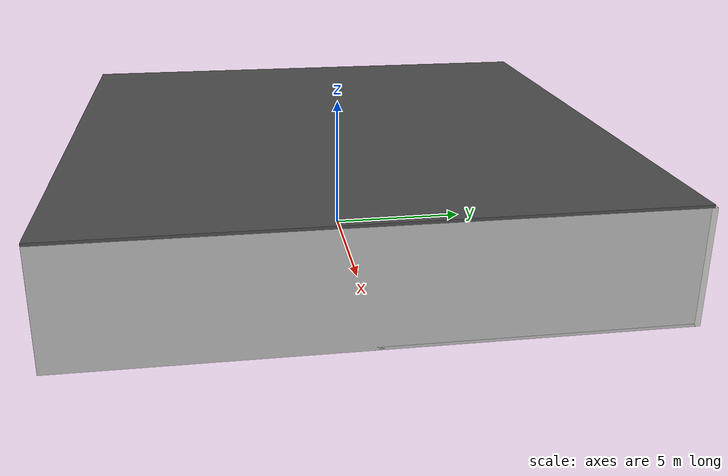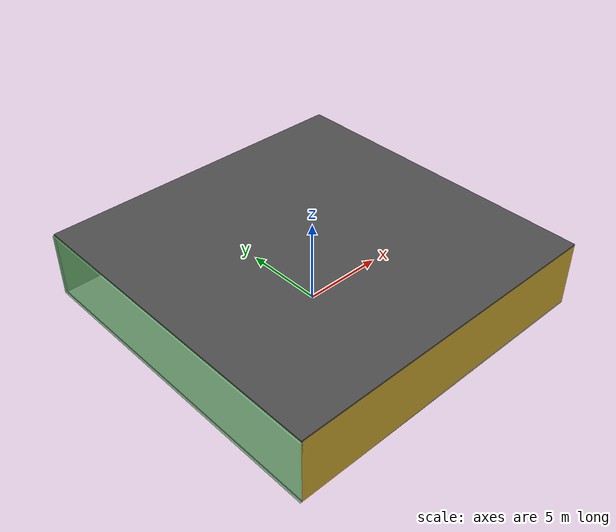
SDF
<sdf version="1.4">
 <world name="default">
  <physics type="ode">
   <max_step_size>0.001</max_step_size>
   <real_time_factor>1</real_time_factor>
   <real_time_update_rate>1000</real_time_update_rate>
   <gravity>0 0 -9.8</gravity>
  </physics>
  <scene><ambient>0.4 0.4 0.4 1</ambient><background>0.7 0.7 0.7 1</background><shadows>1</shadows></scene>
  <model name="Surrounding">
   <static>1</static>
   <link name="Ceiling">
    <collision name="Ceiling_Collision"><geometry><box><size>20 20 0.1</size></box></geometry></collision>
    <visual name="Ceiling_Visual">
     <geometry><box><size>20 20 0.1</size></box></geometry>
     <material>
      <script><uri>file://media/materials/scripts/gazebo.material</uri><name>Gazebo/Road</name></script>
     </material>
    </visual>
    <pose>0 0 4.05 0 0 0</pose>
   </link>
   <link name="Wall_South">
    <collision name="Wall_South_Collision">
     <geometry><box><size>20 0 4</size></box></geometry>
     <pose>0 0 2 0 -0 0</pose>
    </collision>
    <visual name="Wall_South_Visual">
     <pose>0 0 2 0 -0 0</pose>
     <geometry><box><size>20 0 4</size></box></geometry>
     <material>
      <script><uri>file://media/materials/scripts/gazebo.material</uri><name>Gazebo/Gold</name></script>
     </material>
    </visual>
    <velocity_decay><linear>0</linear><angular>0</angular></velocity_decay>
    <pose>0 -10 0 0 -0 0</pose>
   </link>
   <link name="Wall_East">
    <collision name="Wall_21_Collision">
     <geometry><box><size>20 0 4</size></box></geometry>
     <pose>0 0 2 0 -0 0</pose>
    </collision>
    <visual name="Wall_21_Visual">
     <pose>0 0 2 0 -0 0</pose>
     <geometry><box><size>20 0 4</size></box></geometry>
     <material>
      <script><uri>file://media/materials/scripts/gazebo.material</uri><name>Gazebo/CloudySky</name></script>
     </material>
    </visual>
    <velocity_decay><linear>0</linear><angular>0</angular></velocity_decay>
    <pose>10 0 0 0 -0 1.5708</pose>
   </link>
   <link name="Wall_North">
    <collision name="Wall_22_Collision">
     <geometry><box><size>20 0.2 4</size></box></geometry>
     <pose>0 0 2 0 -0 0</pose>
    </collision>
    <visual name="Wall_22_Visual">
     <pose>0 0 2 0 -0 0</pose>
     <geometry><box><size>20 0.2 4</size></box></geometry>
     <material>
      <script><uri>file://media/materials/scripts/gazebo.material</uri><name>Gazebo/CeilingTiled</name></script>
     </material>
    </visual>
    <velocity_decay><linear>0</linear><angular>0</angular></velocity_decay>
    <pose>0 10 0 0 -0 0</pose>
   </link>
   <link name="Wall_West">
    <collision name="Wall_23_Collision">
     <geometry><box><size>20 0.2 4</size></box></geometry>
     <pose>0 0 2 0 -0 0</pose>
    </collision>
    <visual name="Wall_23_Visual">
     <pose>0 0 2 0 -0 0</pose>
     <geometry><box><size>20 0.2 4</size></box></geometry>
     <material>
      <script><uri>file://media/materials/scripts/gazebo.material</uri><name>Gazebo/GreenTransparent</name></script>
     </material>
    </visual>
    <velocity_decay><linear>0</linear><angular>0</angular></velocity_decay>
    <pose>-10 0 0 0 0 -1.5708</pose>
   </link>
   <link name="Ground_link">
    <collision name="collision">
     <pose>0 0 .05 0 -0 0</pose>
     <geometry><box><size>20 20 0.1</size></box></geometry>
    </collision>
    <visual name="visual">
     <pose>0 0 .05 0 -0 0</pose>
     <geometry><box><size>20 20 0.1</size></box></geometry>
     <material>
      <script><uri>file://media/materials/scripts/gazebo.material</uri><name>Gazebo/Pioneer2Body</name></script>
     </material>
    </visual>
   </link>
   <static>1</static>
  </model>
  <spherical_coordinates>
   <surface_model>EARTH_WGS84</surface_model>
   <latitude_deg>0</latitude_deg>
   <longitude_deg>0</longitude_deg>
   <elevation>0</elevation>
   <heading_deg>0</heading_deg>
  </spherical_coordinates>
  <light name="lightball_0" type="diffuse">
   <diffuse>0.8 0.8 0.8 1</diffuse>
   <specular>0.2 0.2 0.2 1</specular>
   <attenuation>
    <range>100</range>
    <constant>0.7</constant>
    <linear>0.01</linear>
    <quadratic>0.001</quadratic>
   </attenuation>
   <direction>-0.5 0.1 -0.9</direction>
   <pose>-3.81677822308 1.08561191697 3.20801434177 0 0 0</pose>
  </light>
  <light name="lightball_1" type="diffuse">
   <diffuse>0.8 0.8 0.8 1</diffuse>
   <specular>0.2 0.2 0.2 1</specular>
   <attenuation>
    <range>100</range>
    <constant>0.7</constant>
    <linear>0.01</linear>
    <quadratic>0.001</quadratic>
   </attenuation>
   <direction>-0.5 0.1 -0.9</direction>
   <pose>-2.92161199162 -8.80665890013 3.30914806258 0 0 0</pose>
  </light>
  <light name="lightball_2" type="diffuse">
   <diffuse>0.8 0.8 0.8 1</diffuse>
   <specular>0.2 0.2 0.2 1</specular>
   <attenuation>
    <range>100</range>
    <constant>0.7</constant>
    <linear>0.01</linear>
    <quadratic>0.001</quadratic>
   </attenuation>
   <direction>-0.5 0.1 -0.9</direction>
   <pose>-7.46662540533 -8.89349669053 0.832092453422 0 0 0</pose>
  </light>
  <light name="lightball_3" type="diffuse">
   <diffuse>0.8 0.8 0.8 1</diffuse>
   <specular>0.2 0.2 0.2 1</specular>
   <attenuation>
    <range>100</range>
    <constant>0.7</constant>
    <linear>0.01</linear>
    <quadratic>0.001</quadratic>
   </attenuation>
   <direction>-0.5 0.1 -0.9</direction>
   <pose>-5.1940035723 9.16325850386 0.604124623073 0 0 0</pose>
  </light>
  <include><uri>model://table</uri><pose>-1.49334409166 2.12786518091 0 0 0 2.73311934547</pose></include>
  <include><uri>model://table</uri><pose>1.18936341153 -7.5208047144 0 0 0 1.99092262774</pose></include>
  <include><uri>model://table</uri><pose>0.700886519779 -3.96714383823 0 0 0 1.40048052367</pose></include>
  <include>
   <uri>model://construction_cone</uri>
   <pose>2.18993470271 5.08182739101 0 0 0 3.0860346744</pose>
  </include>
  <include><uri>model://cabinet</uri><pose>4.3318780473 4.18557981991 0 0 0 1.56609138967</pose></include>
  <include><uri>model://table</uri><pose>7.78829855912 7.57887027897 0 0 0 2.22252522099</pose></include>
 </world>
</sdf>

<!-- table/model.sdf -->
<sdf version="1.5">
  <model name="table">
    <static>true</static>
    <link name="link">
      <collision name="surface">
        <pose>0 0 1.0 0 0 0</pose>
        <geometry>
          <box>
            <size>1.5 0.8 0.03</size>
          </box>
        </geometry>
        <surface>
          <friction>
            <ode>
              <mu>0.6</mu>
              <mu2>0.6</mu2>
            </ode>
          </friction>
        </surface>
      </collision>
      <visual name="visual1">
        <pose>0 0 1.0 0 0 0</pose>
        <geometry>
          <box>
            <size>1.5 0.8 0.03</size>
          </box>
        </geometry>
        <material>
          <script>
            <uri>model://media/materials/scripts/gazebo.material</uri>
            <name>Gazebo/Wood</name>
          </script>
        </material>
      </visual>
      <collision name="front_left_leg">
        <pose>0.68 0.38 0.5 0 0 0</pose>
        <geometry>
          <cylinder>
            <radius>0.02</radius>
            <length>1.0</length>
          </cylinder>
        </geometry>
      </collision>
      <visual name="front_left_leg">
        <pose>0.68 0.38 0.5 0 0 0</pose>
        <geometry>
          <cylinder>
            <radius>0.02</radius>
            <length>1.0</length>
          </cylinder>
        </geometry>
        <material>
          <script>
            <uri>model://media/materials/scripts/gazebo.material</uri>
            <name>Gazebo/Grey</name>
          </script>
        </material>
      </visual>
      <collision name="front_right_leg">
        <pose>0.68 -0.38 0.5 0 0 0</pose>
        <geometry>
          <cylinder>
            <radius>0.02</radius>
            <length>1.0</length>
          </cylinder>
        </geometry>
      </collision>
      <visual name="front_right_leg">
        <pose>0.68 -0.38 0.5 0 0 0</pose>
        <geometry>
          <cylinder>
            <radius>0.02</radius>
            <length>1.0</length>
          </cylinder>
        </geometry>
        <material>
          <script>
            <uri>model://media/materials/scripts/gazebo.material</uri>
            <name>Gazebo/Grey</name>
          </script>
        </material>
      </visual>
      <collision name="back_right_leg">
        <pose>-0.68 -0.38 0.5 0 0 0</pose>
        <geometry>
          <cylinder>
            <radius>0.02</radius>
            <length>1.0</length>
          </cylinder>
        </geometry>
      </collision>
      <visual name="back_right_leg">
        <pose>-0.68 -0.38 0.5 0 0 0</pose>
        <geometry>
          <cylinder>
            <radius>0.02</radius>
            <length>1.0</length>
          </cylinder>
        </geometry>
        <material>
          <script>
            <uri>model://media/materials/scripts/gazebo.material</uri>
            <name>Gazebo/Grey</name>
          </script>
        </material>
      </visual>
      <collision name="back_left_leg">
        <pose>-0.68 0.38 0.5 0 0 0</pose>
        <geometry>
          <cylinder>
            <radius>0.02</radius>
            <length>1.0</length>
          </cylinder>
        </geometry>
      </collision>
      <visual name="back_left_leg">
        <pose>-0.68 0.38 0.5 0 0 0</pose>
        <geometry>
          <cylinder>
            <radius>0.02</radius>
            <length>1.0</length>
          </cylinder>
        </geometry>
        <material>
          <script>
            <uri>model://media/materials/scripts/gazebo.material</uri>
            <name>Gazebo/Grey</name>
          </script>
        </material>
      </visual>
    </link>
  </model>
</sdf>

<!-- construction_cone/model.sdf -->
<sdf version="1.5">
  <model name="Construction Cone">
    <link name="link">
      <collision name="collision">
        <geometry>
          <mesh>
            <scale>10 10 10</scale>
            <uri>file://isr-testbed/construction_cone/meshes/construction_cone.dae</uri>
          </mesh>
        </geometry>
      </collision>
      <visual name="visual">
        <geometry>
          <mesh>
            <scale>10 10 10</scale>
            <uri>file://isr-testbed/construction_cone/meshes/construction_cone.dae</uri>
          </mesh>
        </geometry>
      </visual>
    </link>
  </model>
</sdf>

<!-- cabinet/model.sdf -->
<sdf version="1.5">
  <model name="cabinet">
    <static>true</static>
    <link name="cabinet_bottom_plate">
      <inertial>
        <pose>0 0 -1 0 0 0</pose>
        <inertia>
          <ixx>2.050000</ixx>
          <ixy>0</ixy>
          <ixz>0</ixz>
          <iyy>2.050000</iyy>
          <iyz>0</iyz>
          <izz>2.050000</izz>
        </inertia>
        <mass>25.000000</mass>
      </inertial>
      <collision name="cabinet_bottom_plate_geom">
        <pose>0 0 0.010000 0 0 0</pose>
        <geometry>
          <box>
            <size>0.450000 0.450000 0.020000</size>
          </box>
        </geometry>
      </collision>
      <visual name="cabinet_bottom_plate_geom_visual">
        <pose>0 0 0.010000 0 0 0</pose>
        <geometry>
          <box>
            <size>0.450000 0.450000 0.020000</size>
          </box>
        </geometry>
        <material>
          <script>
            <uri>model://media/materials/scripts/gazebo.material</uri>
            <name>Gazebo/Wood</name>
          </script>
        </material>
      </visual>
      <collision name="cabinet_bottom_plate_geom_cabinet_back_plate">
        <pose>0.235000 0 0.510000 0 0 0</pose>
        <geometry>
          <box>
            <size>0.020000 0.450000 1.020000</size>
          </box>
        </geometry>
      </collision>
      <visual name="cabinet_bottom_plate_geom_cabinet_back_plate_visual">
        <pose>0.235000 0 0.510000 0 0 0</pose>
        <geometry>
          <box>
            <size>0.020000 0.450000 1.020000</size>
          </box>
        </geometry>
        <material>
          <script>
            <uri>model://media/materials/scripts/gazebo.material</uri>
            <name>Gazebo/Wood</name>
          </script>
        </material>
      </visual>
      <collision name="cabinet_bottom_plate_geom_cabinet_left_plate">
        <pose>0 0.235000 0.510000 0 0 0</pose>
        <geometry>
          <box>
            <size>0.450000 0.020000 1.020000</size>
          </box>
        </geometry>
      </collision>
      <visual name="cabinet_bottom_plate_geom_cabinet_left_plate_visual">
        <pose>0 0.235000 0.510000 0 0 0</pose>
        <geometry>
          <box>
            <size>0.450000 0.020000 1.020000</size>
          </box>
        </geometry>
        <material>
          <script>
            <uri>model://media/materials/scripts/gazebo.material</uri>
            <name>Gazebo/Wood</name>
          </script>
        </material>
      </visual>
      <collision name="cabinet_bottom_plate_geom_cabinet_middle_plate">
        <pose>0 0 0.510000 0 0 0</pose>
        <geometry>
          <box>
            <size>0.450000 0.450000 0.020000</size>
          </box>
        </geometry>
      </collision>
      <visual name="cabinet_bottom_plate_geom_cabinet_middle_plate_visual">
        <pose>0 0 0.510000 0 0 0</pose>
        <geometry>
          <box>
            <size>0.450000 0.450000 0.020000</size>
          </box>
        </geometry>
        <material>
          <script>
            <uri>model://media/materials/scripts/gazebo.material</uri>
            <name>Gazebo/Wood</name>
          </script>
        </material>
      </visual>
      <collision name="cabinet_bottom_plate_geom_cabinet_right_plate">
        <pose>0 -0.235000 0.510000 0 0 0</pose>
        <geometry>
          <box>
            <size>0.450000 0.020000 1.020000</size>
          </box>
        </geometry>
      </collision>
      <visual name="cabinet_bottom_plate_geom_cabinet_right_plate_visual">
        <pose>0 -0.235000 0.510000 0 0 0</pose>
        <geometry>
          <box>
            <size>0.450000 0.020000 1.020000</size>
          </box>
        </geometry>
        <material>
          <script>
            <uri>model://media/materials/scripts/gazebo.material</uri>
            <name>Gazebo/Wood</name>
          </script>
        </material>
      </visual>
      <collision name="cabinet_bottom_plate_geom_cabinet_top_plate">
        <pose>0 0 1.010000 0 0 0</pose>
        <geometry>
          <box>
            <size>0.450000 0.450000 0.020000</size>
          </box>
        </geometry>
      </collision>
      <visual name="cabinet_bottom_plate_geom_cabinet_top_plate_visual">
        <pose>0 0 1.010000 0 0 0</pose>
        <geometry>
          <box>
            <size>0.450000 0.450000 0.020000</size>
          </box>
        </geometry>
        <material>
          <script>
            <uri>model://media/materials/scripts/gazebo.material</uri>
            <name>Gazebo/Wood</name>
          </script>
        </material>
      </visual>
    </link>
  </model>
</sdf>
